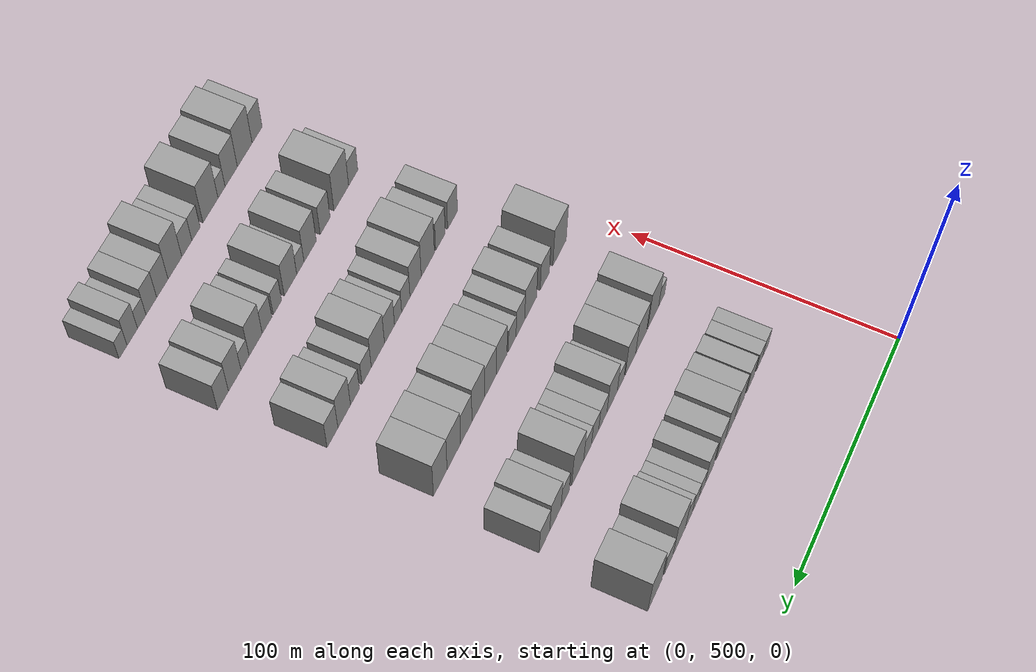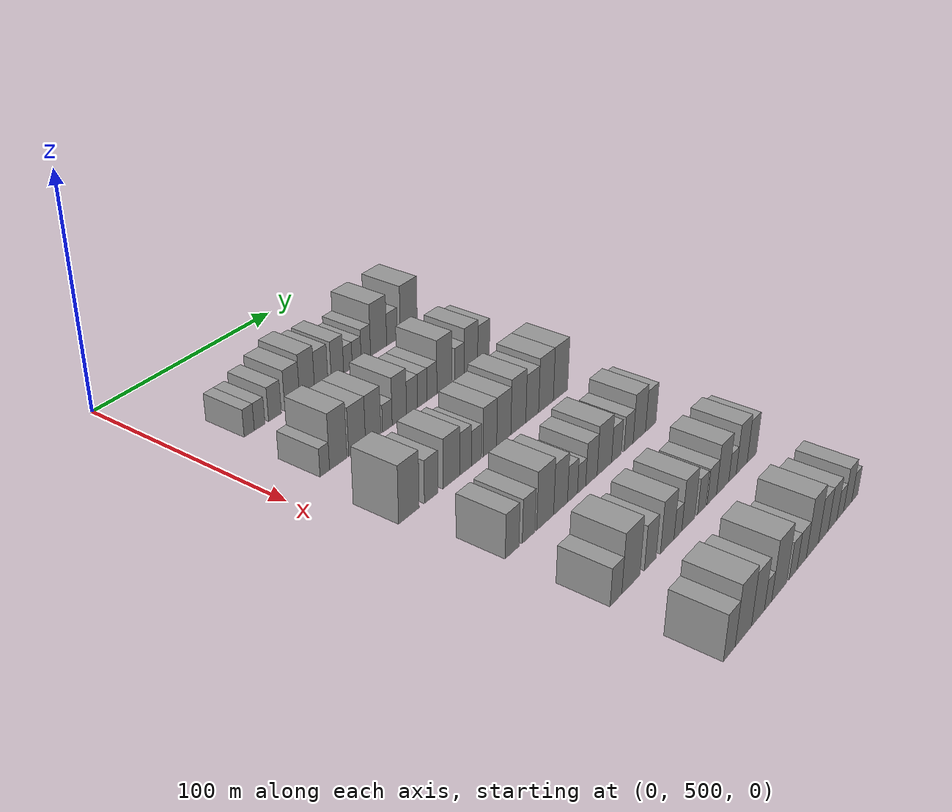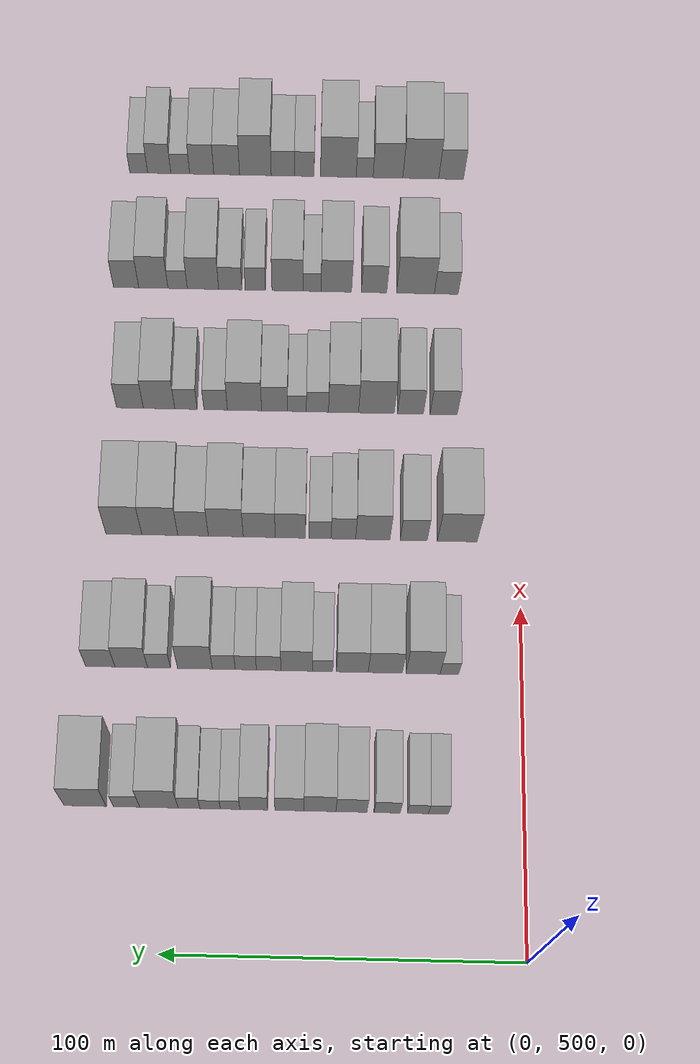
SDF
<sdf version="1.6">
 <world name="default">
  <model name="building_128">
   <static>1</static>
   <pose>50.0000 523.9198 0 0.000000 0.000000 0.000000</pose>
   <link name="link">
    <pose>0 0 6.00 0 0 0</pose>
    <collision name="collision"><geometry><box><size>20.0000 5.5231 12.0000</size></box></geometry></collision>
    <visual name="visual">
     <cast_shadows>0</cast_shadows>
     <geometry><box><size>20.0000 5.5231 12.0000</size></box></geometry>
     <material>
      <script>
       <uri>model://grey_wall/materials/scripts</uri>
       <uri>model://grey_wall/materials/textures</uri>
       <name>vrc/grey_wall</name>
      </script>
     </material>
    </visual>
   </link>
  </model>
  <model name="building_129">
   <static>1</static>
   <pose>50.0000 529.6099 0 0.000000 0.000000 0.000000</pose>
   <link name="link">
    <pose>0 0 6.00 0 0 0</pose>
    <collision name="collision"><geometry><box><size>20.0000 5.8572 12.0000</size></box></geometry></collision>
    <visual name="visual">
     <cast_shadows>0</cast_shadows>
     <geometry><box><size>20.0000 5.8572 12.0000</size></box></geometry>
     <material>
      <script>
       <uri>model://grey_wall/materials/scripts</uri>
       <uri>model://grey_wall/materials/textures</uri>
       <name>vrc/grey_wall</name>
      </script>
     </material>
    </visual>
   </link>
  </model>
  <model name="building_130">
   <static>1</static>
   <pose>50.0000 538.1615 0 0.000000 0.000000 0.000000</pose>
   <link name="link">
    <pose>0 0 7.50 0 0 0</pose>
    <collision name="collision"><geometry><box><size>20.0000 7.2461 15.0000</size></box></geometry></collision>
    <visual name="visual">
     <cast_shadows>0</cast_shadows>
     <geometry><box><size>20.0000 7.2461 15.0000</size></box></geometry>
     <material>
      <script>
       <uri>model://grey_wall/materials/scripts</uri>
       <uri>model://grey_wall/materials/textures</uri>
       <name>vrc/grey_wall</name>
      </script>
     </material>
    </visual>
   </link>
  </model>
  <model name="building_131">
   <static>1</static>
   <pose>50.0000 548.0895 0 0.000000 0.000000 0.000000</pose>
   <link name="link">
    <pose>0 0 9.00 0 0 0</pose>
    <collision name="collision"><geometry><box><size>20.0000 8.6099 18.0000</size></box></geometry></collision>
    <visual name="visual">
     <cast_shadows>0</cast_shadows>
     <geometry><box><size>20.0000 8.6099 18.0000</size></box></geometry>
     <material>
      <script>
       <uri>model://grey_wall/materials/scripts</uri>
       <uri>model://grey_wall/materials/textures</uri>
       <name>vrc/grey_wall</name>
      </script>
     </material>
    </visual>
   </link>
  </model>
  <model name="building_132">
   <static>1</static>
   <pose>50.0000 556.8363 0 0.000000 0.000000 0.000000</pose>
   <link name="link">
    <pose>0 0 10.50 0 0 0</pose>
    <collision name="collision"><geometry><box><size>20.0000 8.8836 21.0000</size></box></geometry></collision>
    <visual name="visual">
     <cast_shadows>0</cast_shadows>
     <geometry><box><size>20.0000 8.8836 21.0000</size></box></geometry>
     <material>
      <script>
       <uri>model://grey_wall/materials/scripts</uri>
       <uri>model://grey_wall/materials/textures</uri>
       <name>vrc/grey_wall</name>
      </script>
     </material>
    </visual>
   </link>
  </model>
  <model name="building_133">
   <static>1</static>
   <pose>50.0000 565.3056 0 0.000000 0.000000 0.000000</pose>
   <link name="link">
    <pose>0 0 9.00 0 0 0</pose>
    <collision name="collision"><geometry><box><size>20.0000 8.0551 18.0000</size></box></geometry></collision>
    <visual name="visual">
     <cast_shadows>0</cast_shadows>
     <geometry><box><size>20.0000 8.0551 18.0000</size></box></geometry>
     <material>
      <script>
       <uri>model://grey_wall/materials/scripts</uri>
       <uri>model://grey_wall/materials/textures</uri>
       <name>vrc/grey_wall</name>
      </script>
     </material>
    </visual>
   </link>
  </model>
  <model name="building_134">
   <static>1</static>
   <pose>50.0000 575.1891 0 0.000000 0.000000 0.000000</pose>
   <link name="link">
    <pose>0 0 9.00 0 0 0</pose>
    <collision name="collision"><geometry><box><size>20.0000 7.7119 18.0000</size></box></geometry></collision>
    <visual name="visual">
     <cast_shadows>0</cast_shadows>
     <geometry><box><size>20.0000 7.7119 18.0000</size></box></geometry>
     <material>
      <script>
       <uri>model://grey_wall/materials/scripts</uri>
       <uri>model://grey_wall/materials/textures</uri>
       <name>vrc/grey_wall</name>
      </script>
     </material>
    </visual>
   </link>
  </model>
  <model name="building_135">
   <static>1</static>
   <pose>50.0000 581.7553 0 0.000000 0.000000 0.000000</pose>
   <link name="link">
    <pose>0 0 6.00 0 0 0</pose>
    <collision name="collision"><geometry><box><size>20.0000 5.4205 12.0000</size></box></geometry></collision>
    <visual name="visual">
     <cast_shadows>0</cast_shadows>
     <geometry><box><size>20.0000 5.4205 12.0000</size></box></geometry>
     <material>
      <script>
       <uri>model://grey_wall/materials/scripts</uri>
       <uri>model://grey_wall/materials/textures</uri>
       <name>vrc/grey_wall</name>
      </script>
     </material>
    </visual>
   </link>
  </model>
  <model name="building_136">
   <static>1</static>
   <pose>50.0000 587.3255 0 0.000000 0.000000 0.000000</pose>
   <link name="link">
    <pose>0 0 6.00 0 0 0</pose>
    <collision name="collision"><geometry><box><size>20.0000 5.7199 12.0000</size></box></geometry></collision>
    <visual name="visual">
     <cast_shadows>0</cast_shadows>
     <geometry><box><size>20.0000 5.7199 12.0000</size></box></geometry>
     <material>
      <script>
       <uri>model://grey_wall/materials/scripts</uri>
       <uri>model://grey_wall/materials/textures</uri>
       <name>vrc/grey_wall</name>
      </script>
     </material>
    </visual>
   </link>
  </model>
  <model name="building_137">
   <static>1</static>
   <pose>50.0000 593.2337 0 0.000000 0.000000 0.000000</pose>
   <link name="link">
    <pose>0 0 7.50 0 0 0</pose>
    <collision name="collision"><geometry><box><size>20.0000 6.0965 15.0000</size></box></geometry></collision>
    <visual name="visual">
     <cast_shadows>0</cast_shadows>
     <geometry><box><size>20.0000 6.0965 15.0000</size></box></geometry>
     <material>
      <script>
       <uri>model://grey_wall/materials/scripts</uri>
       <uri>model://grey_wall/materials/textures</uri>
       <name>vrc/grey_wall</name>
      </script>
     </material>
    </visual>
   </link>
  </model>
  <model name="building_138">
   <static>1</static>
   <pose>50.0000 601.6262 0 0.000000 0.000000 0.000000</pose>
   <link name="link">
    <pose>0 0 12.00 0 0 0</pose>
    <collision name="collision"><geometry><box><size>20.0000 10.6884 24.0000</size></box></geometry></collision>
    <visual name="visual">
     <cast_shadows>0</cast_shadows>
     <geometry><box><size>20.0000 10.6884 24.0000</size></box></geometry>
     <material>
      <script>
       <uri>model://grey_wall/materials/scripts</uri>
       <uri>model://grey_wall/materials/textures</uri>
       <name>vrc/grey_wall</name>
      </script>
     </material>
    </visual>
   </link>
  </model>
  <model name="building_139">
   <static>1</static>
   <pose>50.0000 610.6172 0 0.000000 0.000000 0.000000</pose>
   <link name="link">
    <pose>0 0 7.50 0 0 0</pose>
    <collision name="collision"><geometry><box><size>20.0000 7.2935 15.0000</size></box></geometry></collision>
    <visual name="visual">
     <cast_shadows>0</cast_shadows>
     <geometry><box><size>20.0000 7.2935 15.0000</size></box></geometry>
     <material>
      <script>
       <uri>model://grey_wall/materials/scripts</uri>
       <uri>model://grey_wall/materials/textures</uri>
       <name>vrc/grey_wall</name>
      </script>
     </material>
    </visual>
   </link>
  </model>
  <model name="building_140">
   <static>1</static>
   <pose>50.0000 622.1467 0 0.000000 0.000000 0.000000</pose>
   <link name="link">
    <pose>0 0 12.00 0 0 0</pose>
    <collision name="collision"><geometry><box><size>20.0000 11.7655 24.0000</size></box></geometry></collision>
    <visual name="visual">
     <cast_shadows>0</cast_shadows>
     <geometry><box><size>20.0000 11.7655 24.0000</size></box></geometry>
     <material>
      <script>
       <uri>model://grey_wall/materials/scripts</uri>
       <uri>model://grey_wall/materials/textures</uri>
       <name>vrc/grey_wall</name>
      </script>
     </material>
    </visual>
   </link>
  </model>
  <model name="building_263">
   <static>1</static>
   <pose>90.0000 520.6710 0 0.000000 0.000000 0.000000</pose>
   <link name="link">
    <pose>0 0 6.00 0 0 0</pose>
    <collision name="collision"><geometry><box><size>20.0000 5.2766 12.0000</size></box></geometry></collision>
    <visual name="visual">
     <cast_shadows>0</cast_shadows>
     <geometry><box><size>20.0000 5.2766 12.0000</size></box></geometry>
     <material>
      <script>
       <uri>model://grey_wall/materials/scripts</uri>
       <uri>model://grey_wall/materials/textures</uri>
       <name>vrc/grey_wall</name>
      </script>
     </material>
    </visual>
   </link>
  </model>
  <model name="building_264">
   <static>1</static>
   <pose>90.0000 528.1899 0 0.000000 0.000000 0.000000</pose>
   <link name="link">
    <pose>0 0 12.00 0 0 0</pose>
    <collision name="collision"><geometry><box><size>20.0000 9.7612 24.0000</size></box></geometry></collision>
    <visual name="visual">
     <cast_shadows>0</cast_shadows>
     <geometry><box><size>20.0000 9.7612 24.0000</size></box></geometry>
     <material>
      <script>
       <uri>model://grey_wall/materials/scripts</uri>
       <uri>model://grey_wall/materials/textures</uri>
       <name>vrc/grey_wall</name>
      </script>
     </material>
    </visual>
   </link>
  </model>
  <model name="building_265">
   <static>1</static>
   <pose>90.0000 538.9353 0 0.000000 0.000000 0.000000</pose>
   <link name="link">
    <pose>0 0 10.50 0 0 0</pose>
    <collision name="collision"><geometry><box><size>20.0000 9.7296 21.0000</size></box></geometry></collision>
    <visual name="visual">
     <cast_shadows>0</cast_shadows>
     <geometry><box><size>20.0000 9.7296 21.0000</size></box></geometry>
     <material>
      <script>
       <uri>model://grey_wall/materials/scripts</uri>
       <uri>model://grey_wall/materials/textures</uri>
       <name>vrc/grey_wall</name>
      </script>
     </material>
    </visual>
   </link>
  </model>
  <model name="building_266">
   <static>1</static>
   <pose>90.0000 548.3500 0 0.000000 0.000000 0.000000</pose>
   <link name="link">
    <pose>0 0 10.50 0 0 0</pose>
    <collision name="collision"><geometry><box><size>20.0000 9.0999 21.0000</size></box></geometry></collision>
    <visual name="visual">
     <cast_shadows>0</cast_shadows>
     <geometry><box><size>20.0000 9.0999 21.0000</size></box></geometry>
     <material>
      <script>
       <uri>model://grey_wall/materials/scripts</uri>
       <uri>model://grey_wall/materials/textures</uri>
       <name>vrc/grey_wall</name>
      </script>
     </material>
    </visual>
   </link>
  </model>
  <model name="building_267">
   <static>1</static>
   <pose>90.0000 556.8402 0 0.000000 0.000000 0.000000</pose>
   <link name="link">
    <pose>0 0 6.00 0 0 0</pose>
    <collision name="collision"><geometry><box><size>20.0000 5.8805 12.0000</size></box></geometry></collision>
    <visual name="visual">
     <cast_shadows>0</cast_shadows>
     <geometry><box><size>20.0000 5.8805 12.0000</size></box></geometry>
     <material>
      <script>
       <uri>model://grey_wall/materials/scripts</uri>
       <uri>model://grey_wall/materials/textures</uri>
       <name>vrc/grey_wall</name>
      </script>
     </material>
    </visual>
   </link>
  </model>
  <model name="building_268">
   <static>1</static>
   <pose>90.0000 564.2443 0 0.000000 0.000000 0.000000</pose>
   <link name="link">
    <pose>0 0 10.50 0 0 0</pose>
    <collision name="collision"><geometry><box><size>20.0000 8.9277 21.0000</size></box></geometry></collision>
    <visual name="visual">
     <cast_shadows>0</cast_shadows>
     <geometry><box><size>20.0000 8.9277 21.0000</size></box></geometry>
     <material>
      <script>
       <uri>model://grey_wall/materials/scripts</uri>
       <uri>model://grey_wall/materials/textures</uri>
       <name>vrc/grey_wall</name>
      </script>
     </material>
    </visual>
   </link>
  </model>
  <model name="building_269">
   <static>1</static>
   <pose>90.0000 572.1969 0 0.000000 0.000000 0.000000</pose>
   <link name="link">
    <pose>0 0 7.50 0 0 0</pose>
    <collision name="collision"><geometry><box><size>20.0000 6.9775 15.0000</size></box></geometry></collision>
    <visual name="visual">
     <cast_shadows>0</cast_shadows>
     <geometry><box><size>20.0000 6.9775 15.0000</size></box></geometry>
     <material>
      <script>
       <uri>model://grey_wall/materials/scripts</uri>
       <uri>model://grey_wall/materials/textures</uri>
       <name>vrc/grey_wall</name>
      </script>
     </material>
    </visual>
   </link>
  </model>
  <model name="building_270">
   <static>1</static>
   <pose>90.0000 578.7076 0 0.000000 0.000000 0.000000</pose>
   <link name="link">
    <pose>0 0 7.50 0 0 0</pose>
    <collision name="collision"><geometry><box><size>20.0000 6.0438 15.0000</size></box></geometry></collision>
    <visual name="visual">
     <cast_shadows>0</cast_shadows>
     <geometry><box><size>20.0000 6.0438 15.0000</size></box></geometry>
     <material>
      <script>
       <uri>model://grey_wall/materials/scripts</uri>
       <uri>model://grey_wall/materials/textures</uri>
       <name>vrc/grey_wall</name>
      </script>
     </material>
    </visual>
   </link>
  </model>
  <model name="building_271">
   <static>1</static>
   <pose>90.0000 584.9846 0 0.000000 0.000000 0.000000</pose>
   <link name="link">
    <pose>0 0 7.50 0 0 0</pose>
    <collision name="collision"><geometry><box><size>20.0000 6.5103 15.0000</size></box></geometry></collision>
    <visual name="visual">
     <cast_shadows>0</cast_shadows>
     <geometry><box><size>20.0000 6.5103 15.0000</size></box></geometry>
     <material>
      <script>
       <uri>model://grey_wall/materials/scripts</uri>
       <uri>model://grey_wall/materials/textures</uri>
       <name>vrc/grey_wall</name>
      </script>
     </material>
    </visual>
   </link>
  </model>
  <model name="building_272">
   <static>1</static>
   <pose>90.0000 593.2257 0 0.000000 0.000000 0.000000</pose>
   <link name="link">
    <pose>0 0 12.00 0 0 0</pose>
    <collision name="collision"><geometry><box><size>20.0000 9.9718 24.0000</size></box></geometry></collision>
    <visual name="visual">
     <cast_shadows>0</cast_shadows>
     <geometry><box><size>20.0000 9.9718 24.0000</size></box></geometry>
     <material>
      <script>
       <uri>model://grey_wall/materials/scripts</uri>
       <uri>model://grey_wall/materials/textures</uri>
       <name>vrc/grey_wall</name>
      </script>
     </material>
    </visual>
   </link>
  </model>
  <model name="building_273">
   <static>1</static>
   <pose>90.0000 603.4936 0 0.000000 0.000000 0.000000</pose>
   <link name="link">
    <pose>0 0 7.50 0 0 0</pose>
    <collision name="collision"><geometry><box><size>20.0000 6.5639 15.0000</size></box></geometry></collision>
    <visual name="visual">
     <cast_shadows>0</cast_shadows>
     <geometry><box><size>20.0000 6.5639 15.0000</size></box></geometry>
     <material>
      <script>
       <uri>model://grey_wall/materials/scripts</uri>
       <uri>model://grey_wall/materials/textures</uri>
       <name>vrc/grey_wall</name>
      </script>
     </material>
    </visual>
   </link>
  </model>
  <model name="building_274">
   <static>1</static>
   <pose>90.0000 611.4252 0 0.000000 0.000000 0.000000</pose>
   <link name="link">
    <pose>0 0 10.50 0 0 0</pose>
    <collision name="collision"><geometry><box><size>20.0000 9.2993 21.0000</size></box></geometry></collision>
    <visual name="visual">
     <cast_shadows>0</cast_shadows>
     <geometry><box><size>20.0000 9.2993 21.0000</size></box></geometry>
     <material>
      <script>
       <uri>model://grey_wall/materials/scripts</uri>
       <uri>model://grey_wall/materials/textures</uri>
       <name>vrc/grey_wall</name>
      </script>
     </material>
    </visual>
   </link>
  </model>
  <model name="building_275">
   <static>1</static>
   <pose>90.0000 620.2771 0 0.000000 0.000000 0.000000</pose>
   <link name="link">
    <pose>0 0 9.00 0 0 0</pose>
    <collision name="collision"><geometry><box><size>20.0000 8.4045 18.0000</size></box></geometry></collision>
    <visual name="visual">
     <cast_shadows>0</cast_shadows>
     <geometry><box><size>20.0000 8.4045 18.0000</size></box></geometry>
     <material>
      <script>
       <uri>model://grey_wall/materials/scripts</uri>
       <uri>model://grey_wall/materials/textures</uri>
       <name>vrc/grey_wall</name>
      </script>
     </material>
    </visual>
   </link>
  </model>
  <model name="building_399">
   <static>1</static>
   <pose>130.0000 518.1915 0 0.000000 0.000000 0.000000</pose>
   <link name="link">
    <pose>0 0 12.00 0 0 0</pose>
    <collision name="collision"><geometry><box><size>20.0000 11.5762 24.0000</size></box></geometry></collision>
    <visual name="visual">
     <cast_shadows>0</cast_shadows>
     <geometry><box><size>20.0000 11.5762 24.0000</size></box></geometry>
     <material>
      <script>
       <uri>model://grey_wall/materials/scripts</uri>
       <uri>model://grey_wall/materials/textures</uri>
       <name>vrc/grey_wall</name>
      </script>
     </material>
    </visual>
   </link>
  </model>
  <model name="building_400">
   <static>1</static>
   <pose>130.0000 530.9166 0 0.000000 0.000000 0.000000</pose>
   <link name="link">
    <pose>0 0 9.00 0 0 0</pose>
    <collision name="collision"><geometry><box><size>20.0000 7.8739 18.0000</size></box></geometry></collision>
    <visual name="visual">
     <cast_shadows>0</cast_shadows>
     <geometry><box><size>20.0000 7.8739 18.0000</size></box></geometry>
     <material>
      <script>
       <uri>model://grey_wall/materials/scripts</uri>
       <uri>model://grey_wall/materials/textures</uri>
       <name>vrc/grey_wall</name>
      </script>
     </material>
    </visual>
   </link>
  </model>
  <model name="building_401">
   <static>1</static>
   <pose>130.0000 542.8620 0 0.000000 0.000000 0.000000</pose>
   <link name="link">
    <pose>0 0 10.50 0 0 0</pose>
    <collision name="collision"><geometry><box><size>20.0000 10.0170 21.0000</size></box></geometry></collision>
    <visual name="visual">
     <cast_shadows>0</cast_shadows>
     <geometry><box><size>20.0000 10.0170 21.0000</size></box></geometry>
     <material>
      <script>
       <uri>model://grey_wall/materials/scripts</uri>
       <uri>model://grey_wall/materials/textures</uri>
       <name>vrc/grey_wall</name>
      </script>
     </material>
    </visual>
   </link>
  </model>
  <model name="building_402">
   <static>1</static>
   <pose>130.0000 551.4988 0 0.000000 0.000000 0.000000</pose>
   <link name="link">
    <pose>0 0 9.00 0 0 0</pose>
    <collision name="collision"><geometry><box><size>20.0000 7.2565 18.0000</size></box></geometry></collision>
    <visual name="visual">
     <cast_shadows>0</cast_shadows>
     <geometry><box><size>20.0000 7.2565 18.0000</size></box></geometry>
     <material>
      <script>
       <uri>model://grey_wall/materials/scripts</uri>
       <uri>model://grey_wall/materials/textures</uri>
       <name>vrc/grey_wall</name>
      </script>
     </material>
    </visual>
   </link>
  </model>
  <model name="building_403">
   <static>1</static>
   <pose>130.0000 558.3437 0 0.000000 0.000000 0.000000</pose>
   <link name="link">
    <pose>0 0 7.50 0 0 0</pose>
    <collision name="collision"><geometry><box><size>20.0000 6.4332 15.0000</size></box></geometry></collision>
    <visual name="visual">
     <cast_shadows>0</cast_shadows>
     <geometry><box><size>20.0000 6.4332 15.0000</size></box></geometry>
     <material>
      <script>
       <uri>model://grey_wall/materials/scripts</uri>
       <uri>model://grey_wall/materials/textures</uri>
       <name>vrc/grey_wall</name>
      </script>
     </material>
    </visual>
   </link>
  </model>
  <model name="building_404">
   <static>1</static>
   <pose>130.0000 566.9742 0 0.000000 0.000000 0.000000</pose>
   <link name="link">
    <pose>0 0 10.50 0 0 0</pose>
    <collision name="collision"><geometry><box><size>20.0000 8.8277 21.0000</size></box></geometry></collision>
    <visual name="visual">
     <cast_shadows>0</cast_shadows>
     <geometry><box><size>20.0000 8.8277 21.0000</size></box></geometry>
     <material>
      <script>
       <uri>model://grey_wall/materials/scripts</uri>
       <uri>model://grey_wall/materials/textures</uri>
       <name>vrc/grey_wall</name>
      </script>
     </material>
    </visual>
   </link>
  </model>
  <model name="building_405">
   <static>1</static>
   <pose>130.0000 576.0744 0 0.000000 0.000000 0.000000</pose>
   <link name="link">
    <pose>0 0 10.50 0 0 0</pose>
    <collision name="collision"><geometry><box><size>20.0000 9.3727 21.0000</size></box></geometry></collision>
    <visual name="visual">
     <cast_shadows>0</cast_shadows>
     <geometry><box><size>20.0000 9.3727 21.0000</size></box></geometry>
     <material>
      <script>
       <uri>model://grey_wall/materials/scripts</uri>
       <uri>model://grey_wall/materials/textures</uri>
       <name>vrc/grey_wall</name>
      </script>
     </material>
    </visual>
   </link>
  </model>
  <model name="building_406">
   <static>1</static>
   <pose>130.0000 585.8609 0 0.000000 0.000000 0.000000</pose>
   <link name="link">
    <pose>0 0 12.00 0 0 0</pose>
    <collision name="collision"><geometry><box><size>20.0000 10.2002 24.0000</size></box></geometry></collision>
    <visual name="visual">
     <cast_shadows>0</cast_shadows>
     <geometry><box><size>20.0000 10.2002 24.0000</size></box></geometry>
     <material>
      <script>
       <uri>model://grey_wall/materials/scripts</uri>
       <uri>model://grey_wall/materials/textures</uri>
       <name>vrc/grey_wall</name>
      </script>
     </material>
    </visual>
   </link>
  </model>
  <model name="building_407">
   <static>1</static>
   <pose>130.0000 595.4363 0 0.000000 0.000000 0.000000</pose>
   <link name="link">
    <pose>0 0 10.50 0 0 0</pose>
    <collision name="collision"><geometry><box><size>20.0000 8.9507 21.0000</size></box></geometry></collision>
    <visual name="visual">
     <cast_shadows>0</cast_shadows>
     <geometry><box><size>20.0000 8.9507 21.0000</size></box></geometry>
     <material>
      <script>
       <uri>model://grey_wall/materials/scripts</uri>
       <uri>model://grey_wall/materials/textures</uri>
       <name>vrc/grey_wall</name>
      </script>
     </material>
    </visual>
   </link>
  </model>
  <model name="building_408">
   <static>1</static>
   <pose>130.0000 605.1836 0 0.000000 0.000000 0.000000</pose>
   <link name="link">
    <pose>0 0 12.00 0 0 0</pose>
    <collision name="collision"><geometry><box><size>20.0000 10.5439 24.0000</size></box></geometry></collision>
    <visual name="visual">
     <cast_shadows>0</cast_shadows>
     <geometry><box><size>20.0000 10.5439 24.0000</size></box></geometry>
     <material>
      <script>
       <uri>model://grey_wall/materials/scripts</uri>
       <uri>model://grey_wall/materials/textures</uri>
       <name>vrc/grey_wall</name>
      </script>
     </material>
    </visual>
   </link>
  </model>
  <model name="building_409">
   <static>1</static>
   <pose>130.0000 615.7106 0 0.000000 0.000000 0.000000</pose>
   <link name="link">
    <pose>0 0 12.00 0 0 0</pose>
    <collision name="collision"><geometry><box><size>20.0000 10.5100 24.0000</size></box></geometry></collision>
    <visual name="visual">
     <cast_shadows>0</cast_shadows>
     <geometry><box><size>20.0000 10.5100 24.0000</size></box></geometry>
     <material>
      <script>
       <uri>model://grey_wall/materials/scripts</uri>
       <uri>model://grey_wall/materials/textures</uri>
       <name>vrc/grey_wall</name>
      </script>
     </material>
    </visual>
   </link>
  </model>
  <model name="building_530">
   <static>1</static>
   <pose>170.0000 522.0025 0 0.000000 0.000000 0.000000</pose>
   <link name="link">
    <pose>0 0 9.00 0 0 0</pose>
    <collision name="collision"><geometry><box><size>20.0000 8.1046 18.0000</size></box></geometry></collision>
    <visual name="visual">
     <cast_shadows>0</cast_shadows>
     <geometry><box><size>20.0000 8.1046 18.0000</size></box></geometry>
     <material>
      <script>
       <uri>model://grey_wall/materials/scripts</uri>
       <uri>model://grey_wall/materials/textures</uri>
       <name>vrc/grey_wall</name>
      </script>
     </material>
    </visual>
   </link>
  </model>
  <model name="building_531">
   <static>1</static>
   <pose>170.0000 531.9394 0 0.000000 0.000000 0.000000</pose>
   <link name="link">
    <pose>0 0 9.00 0 0 0</pose>
    <collision name="collision"><geometry><box><size>20.0000 7.7691 18.0000</size></box></geometry></collision>
    <visual name="visual">
     <cast_shadows>0</cast_shadows>
     <geometry><box><size>20.0000 7.7691 18.0000</size></box></geometry>
     <material>
      <script>
       <uri>model://grey_wall/materials/scripts</uri>
       <uri>model://grey_wall/materials/textures</uri>
       <name>vrc/grey_wall</name>
      </script>
     </material>
    </visual>
   </link>
  </model>
  <model name="building_532">
   <static>1</static>
   <pose>170.0000 542.1639 0 0.000000 0.000000 0.000000</pose>
   <link name="link">
    <pose>0 0 12.00 0 0 0</pose>
    <collision name="collision"><geometry><box><size>20.0000 10.6800 24.0000</size></box></geometry></collision>
    <visual name="visual">
     <cast_shadows>0</cast_shadows>
     <geometry><box><size>20.0000 10.6800 24.0000</size></box></geometry>
     <material>
      <script>
       <uri>model://grey_wall/materials/scripts</uri>
       <uri>model://grey_wall/materials/textures</uri>
       <name>vrc/grey_wall</name>
      </script>
     </material>
    </visual>
   </link>
  </model>
  <model name="building_533">
   <static>1</static>
   <pose>170.0000 552.0018 0 0.000000 0.000000 0.000000</pose>
   <link name="link">
    <pose>0 0 10.50 0 0 0</pose>
    <collision name="collision"><geometry><box><size>20.0000 8.9958 21.0000</size></box></geometry></collision>
    <visual name="visual">
     <cast_shadows>0</cast_shadows>
     <geometry><box><size>20.0000 8.9958 21.0000</size></box></geometry>
     <material>
      <script>
       <uri>model://grey_wall/materials/scripts</uri>
       <uri>model://grey_wall/materials/textures</uri>
       <name>vrc/grey_wall</name>
      </script>
     </material>
    </visual>
   </link>
  </model>
  <model name="building_534">
   <static>1</static>
   <pose>170.0000 559.8232 0 0.000000 0.000000 0.000000</pose>
   <link name="link">
    <pose>0 0 7.50 0 0 0</pose>
    <collision name="collision"><geometry><box><size>20.0000 6.6470 15.0000</size></box></geometry></collision>
    <visual name="visual">
     <cast_shadows>0</cast_shadows>
     <geometry><box><size>20.0000 6.6470 15.0000</size></box></geometry>
     <material>
      <script>
       <uri>model://grey_wall/materials/scripts</uri>
       <uri>model://grey_wall/materials/textures</uri>
       <name>vrc/grey_wall</name>
      </script>
     </material>
    </visual>
   </link>
  </model>
  <model name="building_535">
   <static>1</static>
   <pose>170.0000 565.9387 0 0.000000 0.000000 0.000000</pose>
   <link name="link">
    <pose>0 0 6.00 0 0 0</pose>
    <collision name="collision"><geometry><box><size>20.0000 5.5841 12.0000</size></box></geometry></collision>
    <visual name="visual">
     <cast_shadows>0</cast_shadows>
     <geometry><box><size>20.0000 5.5841 12.0000</size></box></geometry>
     <material>
      <script>
       <uri>model://grey_wall/materials/scripts</uri>
       <uri>model://grey_wall/materials/textures</uri>
       <name>vrc/grey_wall</name>
      </script>
     </material>
    </visual>
   </link>
  </model>
  <model name="building_536">
   <static>1</static>
   <pose>170.0000 572.6482 0 0.000000 0.000000 0.000000</pose>
   <link name="link">
    <pose>0 0 9.00 0 0 0</pose>
    <collision name="collision"><geometry><box><size>20.0000 7.8349 18.0000</size></box></geometry></collision>
    <visual name="visual">
     <cast_shadows>0</cast_shadows>
     <geometry><box><size>20.0000 7.8349 18.0000</size></box></geometry>
     <material>
      <script>
       <uri>model://grey_wall/materials/scripts</uri>
       <uri>model://grey_wall/materials/textures</uri>
       <name>vrc/grey_wall</name>
      </script>
     </material>
    </visual>
   </link>
  </model>
  <model name="building_537">
   <static>1</static>
   <pose>170.0000 581.6815 0 0.000000 0.000000 0.000000</pose>
   <link name="link">
    <pose>0 0 10.50 0 0 0</pose>
    <collision name="collision"><geometry><box><size>20.0000 10.2316 21.0000</size></box></geometry></collision>
    <visual name="visual">
     <cast_shadows>0</cast_shadows>
     <geometry><box><size>20.0000 10.2316 21.0000</size></box></geometry>
     <material>
      <script>
       <uri>model://grey_wall/materials/scripts</uri>
       <uri>model://grey_wall/materials/textures</uri>
       <name>vrc/grey_wall</name>
      </script>
     </material>
    </visual>
   </link>
  </model>
  <model name="building_538">
   <static>1</static>
   <pose>170.0000 590.3332 0 0.000000 0.000000 0.000000</pose>
   <link name="link">
    <pose>0 0 7.50 0 0 0</pose>
    <collision name="collision"><geometry><box><size>20.0000 7.0719 15.0000</size></box></geometry></collision>
    <visual name="visual">
     <cast_shadows>0</cast_shadows>
     <geometry><box><size>20.0000 7.0719 15.0000</size></box></geometry>
     <material>
      <script>
       <uri>model://grey_wall/materials/scripts</uri>
       <uri>model://grey_wall/materials/textures</uri>
       <name>vrc/grey_wall</name>
      </script>
     </material>
    </visual>
   </link>
  </model>
  <model name="building_539">
   <static>1</static>
   <pose>170.0000 599.2365 0 0.000000 0.000000 0.000000</pose>
   <link name="link">
    <pose>0 0 7.50 0 0 0</pose>
    <collision name="collision"><geometry><box><size>20.0000 6.7347 15.0000</size></box></geometry></collision>
    <visual name="visual">
     <cast_shadows>0</cast_shadows>
     <geometry><box><size>20.0000 6.7347 15.0000</size></box></geometry>
     <material>
      <script>
       <uri>model://grey_wall/materials/scripts</uri>
       <uri>model://grey_wall/materials/textures</uri>
       <name>vrc/grey_wall</name>
      </script>
     </material>
    </visual>
   </link>
  </model>
  <model name="building_540">
   <static>1</static>
   <pose>170.0000 607.3171 0 0.000000 0.000000 0.000000</pose>
   <link name="link">
    <pose>0 0 10.50 0 0 0</pose>
    <collision name="collision"><geometry><box><size>20.0000 9.4266 21.0000</size></box></geometry></collision>
    <visual name="visual">
     <cast_shadows>0</cast_shadows>
     <geometry><box><size>20.0000 9.4266 21.0000</size></box></geometry>
     <material>
      <script>
       <uri>model://grey_wall/materials/scripts</uri>
       <uri>model://grey_wall/materials/textures</uri>
       <name>vrc/grey_wall</name>
      </script>
     </material>
    </visual>
   </link>
  </model>
  <model name="building_541">
   <static>1</static>
   <pose>170.0000 616.0462 0 0.000000 0.000000 0.000000</pose>
   <link name="link">
    <pose>0 0 9.00 0 0 0</pose>
    <collision name="collision"><geometry><box><size>20.0000 8.0314 18.0000</size></box></geometry></collision>
    <visual name="visual">
     <cast_shadows>0</cast_shadows>
     <geometry><box><size>20.0000 8.0314 18.0000</size></box></geometry>
     <material>
      <script>
       <uri>model://grey_wall/materials/scripts</uri>
       <uri>model://grey_wall/materials/textures</uri>
       <name>vrc/grey_wall</name>
      </script>
     </material>
    </visual>
   </link>
  </model>
  <model name="building_671">
   <static>1</static>
   <pose>210.0000 521.0379 0 0.000000 0.000000 0.000000</pose>
   <link name="link">
    <pose>0 0 7.50 0 0 0</pose>
    <collision name="collision"><geometry><box><size>20.0000 7.2910 15.0000</size></box></geometry></collision>
    <visual name="visual">
     <cast_shadows>0</cast_shadows>
     <geometry><box><size>20.0000 7.2910 15.0000</size></box></geometry>
     <material>
      <script>
       <uri>model://grey_wall/materials/scripts</uri>
       <uri>model://grey_wall/materials/textures</uri>
       <name>vrc/grey_wall</name>
      </script>
     </material>
    </visual>
   </link>
  </model>
  <model name="building_672">
   <static>1</static>
   <pose>210.0000 530.4963 0 0.000000 0.000000 0.000000</pose>
   <link name="link">
    <pose>0 0 12.00 0 0 0</pose>
    <collision name="collision"><geometry><box><size>20.0000 11.6258 24.0000</size></box></geometry></collision>
    <visual name="visual">
     <cast_shadows>0</cast_shadows>
     <geometry><box><size>20.0000 11.6258 24.0000</size></box></geometry>
     <material>
      <script>
       <uri>model://grey_wall/materials/scripts</uri>
       <uri>model://grey_wall/materials/textures</uri>
       <name>vrc/grey_wall</name>
      </script>
     </material>
    </visual>
   </link>
  </model>
  <model name="building_673">
   <static>1</static>
   <pose>210.0000 543.2039 0 0.000000 0.000000 0.000000</pose>
   <link name="link">
    <pose>0 0 9.00 0 0 0</pose>
    <collision name="collision"><geometry><box><size>20.0000 7.7893 18.0000</size></box></geometry></collision>
    <visual name="visual">
     <cast_shadows>0</cast_shadows>
     <geometry><box><size>20.0000 7.7893 18.0000</size></box></geometry>
     <material>
      <script>
       <uri>model://grey_wall/materials/scripts</uri>
       <uri>model://grey_wall/materials/textures</uri>
       <name>vrc/grey_wall</name>
      </script>
     </material>
    </visual>
   </link>
  </model>
  <model name="building_674">
   <static>1</static>
   <pose>210.0000 554.8083 0 0.000000 0.000000 0.000000</pose>
   <link name="link">
    <pose>0 0 10.50 0 0 0</pose>
    <collision name="collision"><geometry><box><size>20.0000 9.4196 21.0000</size></box></geometry></collision>
    <visual name="visual">
     <cast_shadows>0</cast_shadows>
     <geometry><box><size>20.0000 9.4196 21.0000</size></box></geometry>
     <material>
      <script>
       <uri>model://grey_wall/materials/scripts</uri>
       <uri>model://grey_wall/materials/textures</uri>
       <name>vrc/grey_wall</name>
      </script>
     </material>
    </visual>
   </link>
  </model>
  <model name="building_675">
   <static>1</static>
   <pose>210.0000 562.2792 0 0.000000 0.000000 0.000000</pose>
   <link name="link">
    <pose>0 0 6.00 0 0 0</pose>
    <collision name="collision"><geometry><box><size>20.0000 5.5222 12.0000</size></box></geometry></collision>
    <visual name="visual">
     <cast_shadows>0</cast_shadows>
     <geometry><box><size>20.0000 5.5222 12.0000</size></box></geometry>
     <material>
      <script>
       <uri>model://grey_wall/materials/scripts</uri>
       <uri>model://grey_wall/materials/textures</uri>
       <name>vrc/grey_wall</name>
      </script>
     </material>
    </visual>
   </link>
  </model>
  <model name="building_676">
   <static>1</static>
   <pose>210.0000 569.7869 0 0.000000 0.000000 0.000000</pose>
   <link name="link">
    <pose>0 0 10.50 0 0 0</pose>
    <collision name="collision"><geometry><box><size>20.0000 9.4931 21.0000</size></box></geometry></collision>
    <visual name="visual">
     <cast_shadows>0</cast_shadows>
     <geometry><box><size>20.0000 9.4931 21.0000</size></box></geometry>
     <material>
      <script>
       <uri>model://grey_wall/materials/scripts</uri>
       <uri>model://grey_wall/materials/textures</uri>
       <name>vrc/grey_wall</name>
      </script>
     </material>
    </visual>
   </link>
  </model>
  <model name="building_677">
   <static>1</static>
   <pose>210.0000 579.6413 0 0.000000 0.000000 0.000000</pose>
   <link name="link">
    <pose>0 0 7.50 0 0 0</pose>
    <collision name="collision"><geometry><box><size>20.0000 6.2156 15.0000</size></box></geometry></collision>
    <visual name="visual">
     <cast_shadows>0</cast_shadows>
     <geometry><box><size>20.0000 6.2156 15.0000</size></box></geometry>
     <material>
      <script>
       <uri>model://grey_wall/materials/scripts</uri>
       <uri>model://grey_wall/materials/textures</uri>
       <name>vrc/grey_wall</name>
      </script>
     </material>
    </visual>
   </link>
  </model>
  <model name="building_678">
   <static>1</static>
   <pose>210.0000 587.3300 0 0.000000 0.000000 0.000000</pose>
   <link name="link">
    <pose>0 0 7.50 0 0 0</pose>
    <collision name="collision"><geometry><box><size>20.0000 7.1617 15.0000</size></box></geometry></collision>
    <visual name="visual">
     <cast_shadows>0</cast_shadows>
     <geometry><box><size>20.0000 7.1617 15.0000</size></box></geometry>
     <material>
      <script>
       <uri>model://grey_wall/materials/scripts</uri>
       <uri>model://grey_wall/materials/textures</uri>
       <name>vrc/grey_wall</name>
      </script>
     </material>
    </visual>
   </link>
  </model>
  <model name="building_679">
   <static>1</static>
   <pose>210.0000 595.7289 0 0.000000 0.000000 0.000000</pose>
   <link name="link">
    <pose>0 0 10.50 0 0 0</pose>
    <collision name="collision"><geometry><box><size>20.0000 9.6360 21.0000</size></box></geometry></collision>
    <visual name="visual">
     <cast_shadows>0</cast_shadows>
     <geometry><box><size>20.0000 9.6360 21.0000</size></box></geometry>
     <material>
      <script>
       <uri>model://grey_wall/materials/scripts</uri>
       <uri>model://grey_wall/materials/textures</uri>
       <name>vrc/grey_wall</name>
      </script>
     </material>
    </visual>
   </link>
  </model>
  <model name="building_680">
   <static>1</static>
   <pose>210.0000 603.5240 0 0.000000 0.000000 0.000000</pose>
   <link name="link">
    <pose>0 0 6.00 0 0 0</pose>
    <collision name="collision"><geometry><box><size>20.0000 5.9542 12.0000</size></box></geometry></collision>
    <visual name="visual">
     <cast_shadows>0</cast_shadows>
     <geometry><box><size>20.0000 5.9542 12.0000</size></box></geometry>
     <material>
      <script>
       <uri>model://grey_wall/materials/scripts</uri>
       <uri>model://grey_wall/materials/textures</uri>
       <name>vrc/grey_wall</name>
      </script>
     </material>
    </visual>
   </link>
  </model>
  <model name="building_681">
   <static>1</static>
   <pose>210.0000 610.9914 0 0.000000 0.000000 0.000000</pose>
   <link name="link">
    <pose>0 0 10.50 0 0 0</pose>
    <collision name="collision"><geometry><box><size>20.0000 8.9806 21.0000</size></box></geometry></collision>
    <visual name="visual">
     <cast_shadows>0</cast_shadows>
     <geometry><box><size>20.0000 8.9806 21.0000</size></box></geometry>
     <material>
      <script>
       <uri>model://grey_wall/materials/scripts</uri>
       <uri>model://grey_wall/materials/textures</uri>
       <name>vrc/grey_wall</name>
      </script>
     </material>
    </visual>
   </link>
  </model>
  <model name="building_682">
   <static>1</static>
   <pose>210.0000 619.3642 0 0.000000 0.000000 0.000000</pose>
   <link name="link">
    <pose>0 0 9.00 0 0 0</pose>
    <collision name="collision"><geometry><box><size>20.0000 7.7652 18.0000</size></box></geometry></collision>
    <visual name="visual">
     <cast_shadows>0</cast_shadows>
     <geometry><box><size>20.0000 7.7652 18.0000</size></box></geometry>
     <material>
      <script>
       <uri>model://grey_wall/materials/scripts</uri>
       <uri>model://grey_wall/materials/textures</uri>
       <name>vrc/grey_wall</name>
      </script>
     </material>
    </visual>
   </link>
  </model>
  <model name="building_804">
   <static>1</static>
   <pose>250.0000 519.3482 0 0.000000 0.000000 0.000000</pose>
   <link name="link">
    <pose>0 0 9.00 0 0 0</pose>
    <collision name="collision"><geometry><box><size>20.0000 7.7890 18.0000</size></box></geometry></collision>
    <visual name="visual">
     <cast_shadows>0</cast_shadows>
     <geometry><box><size>20.0000 7.7890 18.0000</size></box></geometry>
     <material>
      <script>
       <uri>model://grey_wall/materials/scripts</uri>
       <uri>model://grey_wall/materials/textures</uri>
       <name>vrc/grey_wall</name>
      </script>
     </material>
    </visual>
   </link>
  </model>
  <model name="building_805">
   <static>1</static>
   <pose>250.0000 528.8855 0 0.000000 0.000000 0.000000</pose>
   <link name="link">
    <pose>0 0 12.00 0 0 0</pose>
    <collision name="collision"><geometry><box><size>20.0000 11.2857 24.0000</size></box></geometry></collision>
    <visual name="visual">
     <cast_shadows>0</cast_shadows>
     <geometry><box><size>20.0000 11.2857 24.0000</size></box></geometry>
     <material>
      <script>
       <uri>model://grey_wall/materials/scripts</uri>
       <uri>model://grey_wall/materials/textures</uri>
       <name>vrc/grey_wall</name>
      </script>
     </material>
    </visual>
   </link>
  </model>
  <model name="building_806">
   <static>1</static>
   <pose>250.0000 539.1917 0 0.000000 0.000000 0.000000</pose>
   <link name="link">
    <pose>0 0 10.50 0 0 0</pose>
    <collision name="collision"><geometry><box><size>20.0000 9.3266 21.0000</size></box></geometry></collision>
    <visual name="visual">
     <cast_shadows>0</cast_shadows>
     <geometry><box><size>20.0000 9.3266 21.0000</size></box></geometry>
     <material>
      <script>
       <uri>model://grey_wall/materials/scripts</uri>
       <uri>model://grey_wall/materials/textures</uri>
       <name>vrc/grey_wall</name>
      </script>
     </material>
    </visual>
   </link>
  </model>
  <model name="building_807">
   <static>1</static>
   <pose>250.0000 546.5048 0 0.000000 0.000000 0.000000</pose>
   <link name="link">
    <pose>0 0 6.00 0 0 0</pose>
    <collision name="collision"><geometry><box><size>20.0000 5.2998 12.0000</size></box></geometry></collision>
    <visual name="visual">
     <cast_shadows>0</cast_shadows>
     <geometry><box><size>20.0000 5.2998 12.0000</size></box></geometry>
     <material>
      <script>
       <uri>model://grey_wall/materials/scripts</uri>
       <uri>model://grey_wall/materials/textures</uri>
       <name>vrc/grey_wall</name>
      </script>
     </material>
    </visual>
   </link>
  </model>
  <model name="building_808">
   <static>1</static>
   <pose>250.0000 554.7738 0 0.000000 0.000000 0.000000</pose>
   <link name="link">
    <pose>0 0 12.00 0 0 0</pose>
    <collision name="collision"><geometry><box><size>20.0000 11.2381 24.0000</size></box></geometry></collision>
    <visual name="visual">
     <cast_shadows>0</cast_shadows>
     <geometry><box><size>20.0000 11.2381 24.0000</size></box></geometry>
     <material>
      <script>
       <uri>model://grey_wall/materials/scripts</uri>
       <uri>model://grey_wall/materials/textures</uri>
       <name>vrc/grey_wall</name>
      </script>
     </material>
    </visual>
   </link>
  </model>
  <model name="building_809">
   <static>1</static>
   <pose>250.0000 565.4774 0 0.000000 0.000000 0.000000</pose>
   <link name="link">
    <pose>0 0 7.50 0 0 0</pose>
    <collision name="collision"><geometry><box><size>20.0000 6.1690 15.0000</size></box></geometry></collision>
    <visual name="visual">
     <cast_shadows>0</cast_shadows>
     <geometry><box><size>20.0000 6.1690 15.0000</size></box></geometry>
     <material>
      <script>
       <uri>model://grey_wall/materials/scripts</uri>
       <uri>model://grey_wall/materials/textures</uri>
       <name>vrc/grey_wall</name>
      </script>
     </material>
    </visual>
   </link>
  </model>
  <model name="building_810">
   <static>1</static>
   <pose>250.0000 572.2133 0 0.000000 0.000000 0.000000</pose>
   <link name="link">
    <pose>0 0 7.50 0 0 0</pose>
    <collision name="collision"><geometry><box><size>20.0000 7.3029 15.0000</size></box></geometry></collision>
    <visual name="visual">
     <cast_shadows>0</cast_shadows>
     <geometry><box><size>20.0000 7.3029 15.0000</size></box></geometry>
     <material>
      <script>
       <uri>model://grey_wall/materials/scripts</uri>
       <uri>model://grey_wall/materials/textures</uri>
       <name>vrc/grey_wall</name>
      </script>
     </material>
    </visual>
   </link>
  </model>
  <model name="building_811">
   <static>1</static>
   <pose>250.0000 580.8382 0 0.000000 0.000000 0.000000</pose>
   <link name="link">
    <pose>0 0 12.00 0 0 0</pose>
    <collision name="collision"><geometry><box><size>20.0000 9.9470 24.0000</size></box></geometry></collision>
    <visual name="visual">
     <cast_shadows>0</cast_shadows>
     <geometry><box><size>20.0000 9.9470 24.0000</size></box></geometry>
     <material>
      <script>
       <uri>model://grey_wall/materials/scripts</uri>
       <uri>model://grey_wall/materials/textures</uri>
       <name>vrc/grey_wall</name>
      </script>
     </material>
    </visual>
   </link>
  </model>
  <model name="building_812">
   <static>1</static>
   <pose>250.0000 589.8711 0 0.000000 0.000000 0.000000</pose>
   <link name="link">
    <pose>0 0 9.00 0 0 0</pose>
    <collision name="collision"><geometry><box><size>20.0000 8.1188 18.0000</size></box></geometry></collision>
    <visual name="visual">
     <cast_shadows>0</cast_shadows>
     <geometry><box><size>20.0000 8.1188 18.0000</size></box></geometry>
     <material>
      <script>
       <uri>model://grey_wall/materials/scripts</uri>
       <uri>model://grey_wall/materials/textures</uri>
       <name>vrc/grey_wall</name>
      </script>
     </material>
    </visual>
   </link>
  </model>
  <model name="building_813">
   <static>1</static>
   <pose>250.0000 597.7248 0 0.000000 0.000000 0.000000</pose>
   <link name="link">
    <pose>0 0 9.00 0 0 0</pose>
    <collision name="collision"><geometry><box><size>20.0000 7.5886 18.0000</size></box></geometry></collision>
    <visual name="visual">
     <cast_shadows>0</cast_shadows>
     <geometry><box><size>20.0000 7.5886 18.0000</size></box></geometry>
     <material>
      <script>
       <uri>model://grey_wall/materials/scripts</uri>
       <uri>model://grey_wall/materials/textures</uri>
       <name>vrc/grey_wall</name>
      </script>
     </material>
    </visual>
   </link>
  </model>
  <model name="building_814">
   <static>1</static>
   <pose>250.0000 604.4750 0 0.000000 0.000000 0.000000</pose>
   <link name="link">
    <pose>0 0 6.00 0 0 0</pose>
    <collision name="collision"><geometry><box><size>20.0000 5.9118 12.0000</size></box></geometry></collision>
    <visual name="visual">
     <cast_shadows>0</cast_shadows>
     <geometry><box><size>20.0000 5.9118 12.0000</size></box></geometry>
     <material>
      <script>
       <uri>model://grey_wall/materials/scripts</uri>
       <uri>model://grey_wall/materials/textures</uri>
       <name>vrc/grey_wall</name>
      </script>
     </material>
    </visual>
   </link>
  </model>
  <model name="building_815">
   <static>1</static>
   <pose>250.0000 611.0878 0 0.000000 0.000000 0.000000</pose>
   <link name="link">
    <pose>0 0 9.00 0 0 0</pose>
    <collision name="collision"><geometry><box><size>20.0000 7.3138 18.0000</size></box></geometry></collision>
    <visual name="visual">
     <cast_shadows>0</cast_shadows>
     <geometry><box><size>20.0000 7.3138 18.0000</size></box></geometry>
     <material>
      <script>
       <uri>model://grey_wall/materials/scripts</uri>
       <uri>model://grey_wall/materials/textures</uri>
       <name>vrc/grey_wall</name>
      </script>
     </material>
    </visual>
   </link>
  </model>
  <model name="building_816">
   <static>1</static>
   <pose>250.0000 617.5410 0 0.000000 0.000000 0.000000</pose>
   <link name="link">
    <pose>0 0 6.00 0 0 0</pose>
    <collision name="collision"><geometry><box><size>20.0000 5.5925 12.0000</size></box></geometry></collision>
    <visual name="visual">
     <cast_shadows>0</cast_shadows>
     <geometry><box><size>20.0000 5.5925 12.0000</size></box></geometry>
     <material>
      <script>
       <uri>model://grey_wall/materials/scripts</uri>
       <uri>model://grey_wall/materials/textures</uri>
       <name>vrc/grey_wall</name>
      </script>
     </material>
    </visual>
   </link>
  </model>
 </world>
</sdf>
